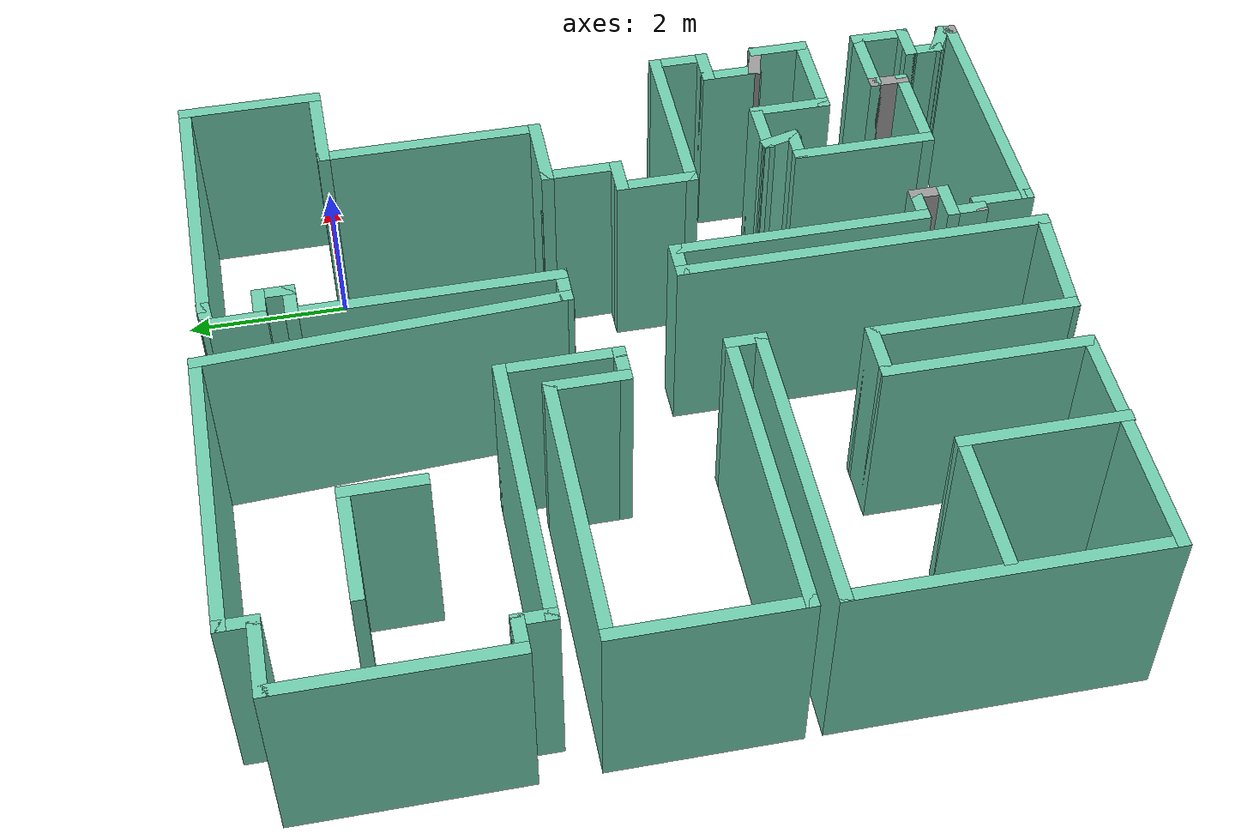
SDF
<?xml version='1.0'?>
<sdf version='1.6'>
  <model name='map_58'>
    <pose frame=''>-3.02526 -3.22087 0 0 -0 0</pose>
    <link name='Wall_0'>
      <collision name='Wall_0_Collision'>
        <geometry>
          <box>
            <size>3.75 0.15 2.5</size>
          </box>
        </geometry>
        <pose frame=''>0 0 1.25 0 -0 0</pose>
      </collision>
      <visual name='Wall_0_Visual'>
        <pose frame=''>0 0 1.25 0 -0 0</pose>
        <geometry>
          <box>
            <size>3.75 0.15 2.5</size>
          </box>
        </geometry>
        <material>
          <script>
            <uri>file://media/materials/scripts/gazebo.material</uri>
            <name>Gazebo/Grey</name>
          </script>
          <ambient>0.435294 0.796078 0.67451 1</ambient>
        </material>
        <meta>
          <layer>0</layer>
        </meta>
      </visual>
      <pose frame=''>-1.65911 4.97874 0 0 -0 3.14159</pose>
    </link>
    <link name='Wall_1'>
      <collision name='Wall_1_Collision'>
        <geometry>
          <box>
            <size>0.5 0.15 2.5</size>
          </box>
        </geometry>
        <pose frame=''>0 0 1.25 0 -0 0</pose>
      </collision>
      <visual name='Wall_1_Visual'>
        <pose frame=''>0 0 1.25 0 -0 0</pose>
        <geometry>
          <box>
            <size>0.5 0.15 2.5</size>
          </box>
        </geometry>
        <material>
          <script>
            <uri>file://media/materials/scripts/gazebo.material</uri>
            <name>Gazebo/Grey</name>
          </script>
          <ambient>0.435294 0.796078 0.67451 1</ambient>
        </material>
        <meta>
          <layer>0</layer>
        </meta>
      </visual>
      <pose frame=''>-3.45912 4.80374 0 0 -0 -1.5708</pose>
    </link>
    <link name='Wall_10'>
      <collision name='Wall_10_Collision'>
        <geometry>
          <box>
            <size>0.5 0.15 2.5</size>
          </box>
        </geometry>
        <pose frame=''>0 0 1.25 0 -0 0</pose>
      </collision>
      <visual name='Wall_10_Visual'>
        <pose frame=''>0 0 1.25 0 -0 0</pose>
        <geometry>
          <box>
            <size>0.5 0.15 2.5</size>
          </box>
        </geometry>
        <material>
          <script>
            <uri>file://media/materials/scripts/gazebo.material</uri>
            <name>Gazebo/Grey</name>
          </script>
          <ambient>0.435294 0.796078 0.67451 1</ambient>
        </material>
        <meta>
          <layer>0</layer>
        </meta>
      </visual>
      <pose frame=''>-0.784115 0.328738 0 0 -0 3.14159</pose>
    </link>
    <link name='Wall_13'>
      <collision name='Wall_13_Collision'>
        <geometry>
          <box>
            <size>1 0.15 2.5</size>
          </box>
        </geometry>
        <pose frame=''>0 0 1.25 0 -0 0</pose>
      </collision>
      <visual name='Wall_13_Visual'>
        <pose frame=''>0 0 1.25 0 -0 0</pose>
        <geometry>
          <box>
            <size>1 0.15 2.5</size>
          </box>
        </geometry>
        <material>
          <script>
            <uri>file://media/materials/scripts/gazebo.material</uri>
            <name>Gazebo/Grey</name>
          </script>
          <ambient>0.435294 0.796078 0.67451 1</ambient>
        </material>
        <meta>
          <layer>0</layer>
        </meta>
      </visual>
      <pose frame=''>-0.959115 0.753738 0 0 -0 1.5708</pose>
    </link>
    <link name='Wall_14'>
      <collision name='Wall_14_Collision'>
        <geometry>
          <box>
            <size>3.5 0.15 2.5</size>
          </box>
        </geometry>
        <pose frame=''>0 0 1.25 0 -0 0</pose>
      </collision>
      <visual name='Wall_14_Visual'>
        <pose frame=''>0 0 1.25 0 -0 0</pose>
        <geometry>
          <box>
            <size>3.5 0.15 2.5</size>
          </box>
        </geometry>
        <material>
          <script>
            <uri>file://media/materials/scripts/gazebo.material</uri>
            <name>Gazebo/Grey</name>
          </script>
          <ambient>0.435294 0.796078 0.67451 1</ambient>
        </material>
        <meta>
          <layer>0</layer>
        </meta>
      </visual>
      <pose frame=''>-2.63411 1.17874 0 0 -0 3.14159</pose>
    </link>
    <link name='Wall_15'>
      <collision name='Wall_15_Collision'>
        <geometry>
          <box>
            <size>2.25 0.15 2.5</size>
          </box>
        </geometry>
        <pose frame=''>0 0 1.25 0 -0 0</pose>
      </collision>
      <visual name='Wall_15_Visual'>
        <pose frame=''>0 0 1.25 0 -0 0</pose>
        <geometry>
          <box>
            <size>2.25 0.15 2.5</size>
          </box>
        </geometry>
        <material>
          <script>
            <uri>file://media/materials/scripts/gazebo.material</uri>
            <name>Gazebo/Grey</name>
          </script>
          <ambient>0.435294 0.796078 0.67451 1</ambient>
        </material>
        <meta>
          <layer>0</layer>
        </meta>
      </visual>
      <pose frame=''>-4.30912 0.128738 0 0 -0 -1.5708</pose>
    </link>
    <link name='Wall_16'>
      <collision name='Wall_16_Collision'>
        <geometry>
          <box>
            <size>3.75 0.15 2.5</size>
          </box>
        </geometry>
        <pose frame=''>0 0 1.25 0 -0 0</pose>
      </collision>
      <visual name='Wall_16_Visual'>
        <pose frame=''>0 0 1.25 0 -0 0</pose>
        <geometry>
          <box>
            <size>3.75 0.15 2.5</size>
          </box>
        </geometry>
        <material>
          <script>
            <uri>file://media/materials/scripts/gazebo.material</uri>
            <name>Gazebo/Grey</name>
          </script>
          <ambient>0.435294 0.796078 0.67451 1</ambient>
        </material>
        <meta>
          <layer>0</layer>
        </meta>
      </visual>
      <pose frame=''>-2.50911 -0.921263 0 0 -0 0</pose>
    </link>
    <link name='Wall_17'>
      <collision name='Wall_17_Collision'>
        <geometry>
          <box>
            <size>0.5 0.15 2.5</size>
          </box>
        </geometry>
        <pose frame=''>0 0 1.25 0 -0 0</pose>
      </collision>
      <visual name='Wall_17_Visual'>
        <pose frame=''>0 0 1.25 0 -0 0</pose>
        <geometry>
          <box>
            <size>0.5 0.15 2.5</size>
          </box>
        </geometry>
        <material>
          <script>
            <uri>file://media/materials/scripts/gazebo.material</uri>
            <name>Gazebo/Grey</name>
          </script>
          <ambient>0.435294 0.796078 0.67451 1</ambient>
        </material>
        <meta>
          <layer>0</layer>
        </meta>
      </visual>
      <pose frame=''>-0.709115 -1.09626 0 0 -0 -1.5708</pose>
    </link>
    <link name='Wall_18'>
      <collision name='Wall_18_Collision'>
        <geometry>
          <box>
            <size>3.75 0.15 2.5</size>
          </box>
        </geometry>
        <pose frame=''>0 0 1.25 0 -0 0</pose>
      </collision>
      <visual name='Wall_18_Visual'>
        <pose frame=''>0 0 1.25 0 -0 0</pose>
        <geometry>
          <box>
            <size>3.75 0.15 2.5</size>
          </box>
        </geometry>
        <material>
          <script>
            <uri>file://media/materials/scripts/gazebo.material</uri>
            <name>Gazebo/Grey</name>
          </script>
          <ambient>0.435294 0.796078 0.67451 1</ambient>
        </material>
        <meta>
          <layer>0</layer>
        </meta>
      </visual>
      <pose frame=''>-2.50911 -1.27126 0 0 -0 3.14159</pose>
    </link>
    <link name='Wall_2'>
      <collision name='Wall_2_Collision'>
        <geometry>
          <box>
            <size>1 0.15 2.5</size>
          </box>
        </geometry>
        <pose frame=''>0 0 1.25 0 -0 0</pose>
      </collision>
      <visual name='Wall_2_Visual'>
        <pose frame=''>0 0 1.25 0 -0 0</pose>
        <geometry>
          <box>
            <size>1 0.15 2.5</size>
          </box>
        </geometry>
        <material>
          <script>
            <uri>file://media/materials/scripts/gazebo.material</uri>
            <name>Gazebo/Grey</name>
          </script>
          <ambient>0.435294 0.796078 0.67451 1</ambient>
        </material>
        <meta>
          <layer>0</layer>
        </meta>
      </visual>
      <pose frame=''>-3.88411 4.62874 0 0 -0 3.14159</pose>
    </link>
    <link name='Wall_21'>
      <collision name='Wall_21_Collision'>
        <geometry>
          <box>
            <size>3.75 0.15 2.5</size>
          </box>
        </geometry>
        <pose frame=''>0 0 1.25 0 -0 0</pose>
      </collision>
      <visual name='Wall_21_Visual'>
        <pose frame=''>0 0 1.25 0 -0 0</pose>
        <geometry>
          <box>
            <size>3.75 0.15 2.5</size>
          </box>
        </geometry>
        <material>
          <script>
            <uri>file://media/materials/scripts/gazebo.material</uri>
            <name>Gazebo/Grey</name>
          </script>
          <ambient>0.435294 0.796078 0.67451 1</ambient>
        </material>
        <meta>
          <layer>0</layer>
        </meta>
      </visual>
      <pose frame=''>-4.30912 -3.07126 0 0 -0 -1.5708</pose>
    </link>
    <link name='Wall_22'>
      <collision name='Wall_22_Collision'>
        <geometry>
          <box>
            <size>3 0.15 2.5</size>
          </box>
        </geometry>
        <pose frame=''>0 0 1.25 0 -0 0</pose>
      </collision>
      <visual name='Wall_22_Visual'>
        <pose frame=''>0 0 1.25 0 -0 0</pose>
        <geometry>
          <box>
            <size>3 0.15 2.5</size>
          </box>
        </geometry>
        <material>
          <script>
            <uri>file://media/materials/scripts/gazebo.material</uri>
            <name>Gazebo/Grey</name>
          </script>
          <ambient>0.435294 0.796078 0.67451 1</ambient>
        </material>
        <meta>
          <layer>0</layer>
        </meta>
      </visual>
      <pose frame=''>-2.88411 -4.87126 0 0 -0 0</pose>
    </link>
    <link name='Wall_23'>
      <collision name='Wall_23_Collision'>
        <geometry>
          <box>
            <size>2.5 0.15 2.5</size>
          </box>
        </geometry>
        <pose frame=''>0 0 1.25 0 -0 0</pose>
      </collision>
      <visual name='Wall_23_Visual'>
        <pose frame=''>0 0 1.25 0 -0 0</pose>
        <geometry>
          <box>
            <size>2.5 0.15 2.5</size>
          </box>
        </geometry>
        <material>
          <script>
            <uri>file://media/materials/scripts/gazebo.material</uri>
            <name>Gazebo/Grey</name>
          </script>
          <ambient>0.435294 0.796078 0.67451 1</ambient>
        </material>
        <meta>
          <layer>0</layer>
        </meta>
      </visual>
      <pose frame=''>-1.45911 -3.69626 0 0 -0 1.5708</pose>
    </link>
    <link name='Wall_24'>
      <collision name='Wall_24_Collision'>
        <geometry>
          <box>
            <size>0.75 0.15 2.5</size>
          </box>
        </geometry>
        <pose frame=''>0 0 1.25 0 -0 0</pose>
      </collision>
      <visual name='Wall_24_Visual'>
        <pose frame=''>0 0 1.25 0 -0 0</pose>
        <geometry>
          <box>
            <size>0.75 0.15 2.5</size>
          </box>
        </geometry>
        <material>
          <script>
            <uri>file://media/materials/scripts/gazebo.material</uri>
            <name>Gazebo/Grey</name>
          </script>
          <ambient>0.435294 0.796078 0.67451 1</ambient>
        </material>
        <meta>
          <layer>0</layer>
        </meta>
      </visual>
      <pose frame=''>-1.15911 -2.52126 0 0 -0 0</pose>
    </link>
    <link name='Wall_25'>
      <collision name='Wall_25_Collision'>
        <geometry>
          <box>
            <size>2.5 0.15 2.5</size>
          </box>
        </geometry>
        <pose frame=''>0 0 1.25 0 -0 0</pose>
      </collision>
      <visual name='Wall_25_Visual'>
        <pose frame=''>0 0 1.25 0 -0 0</pose>
        <geometry>
          <box>
            <size>2.5 0.15 2.5</size>
          </box>
        </geometry>
        <material>
          <script>
            <uri>file://media/materials/scripts/gazebo.material</uri>
            <name>Gazebo/Grey</name>
          </script>
          <ambient>0.435294 0.796078 0.67451 1</ambient>
        </material>
        <meta>
          <layer>0</layer>
        </meta>
      </visual>
      <pose frame=''>-0.859115 -3.69626 0 0 -0 -1.5708</pose>
    </link>
    <link name='Wall_26'>
      <collision name='Wall_26_Collision'>
        <geometry>
          <box>
            <size>1.50412 0.15 2.5</size>
          </box>
        </geometry>
        <pose frame=''>0 0 1.25 0 -0 0</pose>
      </collision>
      <visual name='Wall_26_Visual'>
        <pose frame=''>0 0 1.25 0 -0 0</pose>
        <geometry>
          <box>
            <size>1.50412 0.15 2.5</size>
          </box>
        </geometry>
        <material>
          <script>
            <uri>file://media/materials/scripts/gazebo.material</uri>
            <name>Gazebo/Grey</name>
          </script>
          <ambient>0.435294 0.796078 0.67451 1</ambient>
        </material>
        <meta>
          <layer>0</layer>
        </meta>
      </visual>
      <pose frame=''>-0.184115 -4.92403 0 0 -0 -0.078016</pose>
    </link>
    <link name='Wall_3'>
      <collision name='Wall_3_Collision'>
        <geometry>
          <box>
            <size>2.75 0.15 2.5</size>
          </box>
        </geometry>
        <pose frame=''>0 0 1.25 0 -0 0</pose>
      </collision>
      <visual name='Wall_3_Visual'>
        <pose frame=''>0 0 1.25 0 -0 0</pose>
        <geometry>
          <box>
            <size>2.75 0.15 2.5</size>
          </box>
        </geometry>
        <material>
          <script>
            <uri>file://media/materials/scripts/gazebo.material</uri>
            <name>Gazebo/Grey</name>
          </script>
          <ambient>0.435294 0.796078 0.67451 1</ambient>
        </material>
        <meta>
          <layer>0</layer>
        </meta>
      </visual>
      <pose frame=''>-4.30912 3.32874 0 0 -0 -1.5708</pose>
    </link>
    <link name='Wall_30'>
      <collision name='Wall_30_Collision'>
        <geometry>
          <box>
            <size>0.5 0.15 2.5</size>
          </box>
        </geometry>
        <pose frame=''>0 0 1.25 0 -0 0</pose>
      </collision>
      <visual name='Wall_30_Visual'>
        <pose frame=''>0 0 1.25 0 -0 0</pose>
        <geometry>
          <box>
            <size>0.5 0.15 2.5</size>
          </box>
        </geometry>
        <material>
          <script>
            <uri>file://media/materials/scripts/gazebo.material</uri>
            <name>Gazebo/Grey</name>
          </script>
          <ambient>0.435294 0.796078 0.67451 1</ambient>
        </material>
        <meta>
          <layer>0</layer>
        </meta>
      </visual>
      <pose frame=''>1.01588 -3.62126 0 0 -0 0</pose>
    </link>
    <link name='Wall_31'>
      <collision name='Wall_31_Collision'>
        <geometry>
          <box>
            <size>0.5 0.15 2.5</size>
          </box>
        </geometry>
        <pose frame=''>0 0 1.25 0 -0 0</pose>
      </collision>
      <visual name='Wall_31_Visual'>
        <pose frame=''>0 0 1.25 0 -0 0</pose>
        <geometry>
          <box>
            <size>0.5 0.15 2.5</size>
          </box>
        </geometry>
        <material>
          <script>
            <uri>file://media/materials/scripts/gazebo.material</uri>
            <name>Gazebo/Grey</name>
          </script>
          <ambient>1 1 1 1</ambient>
        </material>
        <meta>
          <layer>0</layer>
        </meta>
      </visual>
      <pose frame=''>1.19088 -3.79626 0 0 -0 -1.5708</pose>
    </link>
    <link name='Wall_32'>
      <collision name='Wall_32_Collision'>
        <geometry>
          <box>
            <size>0.5 0.15 2.5</size>
          </box>
        </geometry>
        <pose frame=''>0 0 1.25 0 -0 0</pose>
      </collision>
      <visual name='Wall_32_Visual'>
        <pose frame=''>0 0 1.25 0 -0 0</pose>
        <geometry>
          <box>
            <size>0.5 0.15 2.5</size>
          </box>
        </geometry>
        <material>
          <script>
            <uri>file://media/materials/scripts/gazebo.material</uri>
            <name>Gazebo/Grey</name>
          </script>
          <ambient>0.435294 0.796078 0.67451 1</ambient>
        </material>
        <meta>
          <layer>0</layer>
        </meta>
      </visual>
      <pose frame=''>1.01588 -3.97126 0 0 -0 3.14159</pose>
    </link>
    <link name='Wall_33'>
      <collision name='Wall_33_Collision'>
        <geometry>
          <box>
            <size>0.5 0.15 2.5</size>
          </box>
        </geometry>
        <pose frame=''>0 0 1.25 0 -0 0</pose>
      </collision>
      <visual name='Wall_33_Visual'>
        <pose frame=''>0 0 1.25 0 -0 0</pose>
        <geometry>
          <box>
            <size>0.5 0.15 2.5</size>
          </box>
        </geometry>
        <material>
          <script>
            <uri>file://media/materials/scripts/gazebo.material</uri>
            <name>Gazebo/Grey</name>
          </script>
          <ambient>0.435294 0.796078 0.67451 1</ambient>
        </material>
        <meta>
          <layer>0</layer>
        </meta>
      </visual>
      <pose frame=''>0.840885 -4.14626 0 0 -0 -1.5708</pose>
    </link>
    <link name='Wall_34'>
      <collision name='Wall_34_Collision'>
        <geometry>
          <box>
            <size>0.25 0.15 2.5</size>
          </box>
        </geometry>
        <pose frame=''>0 0 1.25 0 -0 0</pose>
      </collision>
      <visual name='Wall_34_Visual'>
        <pose frame=''>0 0 1.25 0 -0 0</pose>
        <geometry>
          <box>
            <size>0.25 0.15 2.5</size>
          </box>
        </geometry>
        <material>
          <script>
            <uri>file://media/materials/scripts/gazebo.material</uri>
            <name>Gazebo/Grey</name>
          </script>
          <ambient>1 1 1 1</ambient>
        </material>
        <meta>
          <layer>0</layer>
        </meta>
      </visual>
      <pose frame=''>0.890885 -4.32126 0 0 -0 0</pose>
    </link>
    <link name='Wall_35'>
      <collision name='Wall_35_Collision'>
        <geometry>
          <box>
            <size>0.75 0.15 2.5</size>
          </box>
        </geometry>
        <pose frame=''>0 0 1.25 0 -0 0</pose>
      </collision>
      <visual name='Wall_35_Visual'>
        <pose frame=''>0 0 1.25 0 -0 0</pose>
        <geometry>
          <box>
            <size>0.75 0.15 2.5</size>
          </box>
        </geometry>
        <material>
          <script>
            <uri>file://media/materials/scripts/gazebo.material</uri>
            <name>Gazebo/Grey</name>
          </script>
          <ambient>0.435294 0.796078 0.67451 1</ambient>
        </material>
        <meta>
          <layer>0</layer>
        </meta>
      </visual>
      <pose frame=''>0.940885 -4.62126 0 0 -0 -1.5708</pose>
    </link>
    <link name='Wall_36'>
      <collision name='Wall_36_Collision'>
        <geometry>
          <box>
            <size>3.25 0.15 2.5</size>
          </box>
        </geometry>
        <pose frame=''>0 0 1.25 0 -0 0</pose>
      </collision>
      <visual name='Wall_36_Visual'>
        <pose frame=''>0 0 1.25 0 -0 0</pose>
        <geometry>
          <box>
            <size>3.25 0.15 2.5</size>
          </box>
        </geometry>
        <material>
          <script>
            <uri>file://media/materials/scripts/gazebo.material</uri>
            <name>Gazebo/Grey</name>
          </script>
          <ambient>0.435294 0.796078 0.67451 1</ambient>
        </material>
        <meta>
          <layer>0</layer>
        </meta>
      </visual>
      <pose frame=''>2.49089 -4.92126 0 0 -0 0</pose>
    </link>
    <link name='Wall_37'>
      <collision name='Wall_37_Collision'>
        <geometry>
          <box>
            <size>0.25 0.15 2.5</size>
          </box>
        </geometry>
        <pose frame=''>0 0 1.25 0 -0 0</pose>
      </collision>
      <visual name='Wall_37_Visual'>
        <pose frame=''>0 0 1.25 0 -0 0</pose>
        <geometry>
          <box>
            <size>0.25 0.15 2.5</size>
          </box>
        </geometry>
        <material>
          <script>
            <uri>file://media/materials/scripts/gazebo.material</uri>
            <name>Gazebo/Grey</name>
          </script>
          <ambient>1 1 1 1</ambient>
        </material>
        <meta>
          <layer>0</layer>
        </meta>
      </visual>
      <pose frame=''>4.04089 -4.87126 0 0 -0 1.5708</pose>
    </link>
    <link name='Wall_38'>
      <collision name='Wall_38_Collision'>
        <geometry>
          <box>
            <size>0.5 0.15 2.5</size>
          </box>
        </geometry>
        <pose frame=''>0 0 1.25 0 -0 0</pose>
      </collision>
      <visual name='Wall_38_Visual'>
        <pose frame=''>0 0 1.25 0 -0 0</pose>
        <geometry>
          <box>
            <size>0.5 0.15 2.5</size>
          </box>
        </geometry>
        <material>
          <script>
            <uri>file://media/materials/scripts/gazebo.material</uri>
            <name>Gazebo/Grey</name>
          </script>
          <ambient>0.435294 0.796078 0.67451 1</ambient>
        </material>
        <meta>
          <layer>0</layer>
        </meta>
      </visual>
      <pose frame=''>3.88933 -4.73376 0 0 -0 2.61799</pose>
    </link>
    <link name='Wall_39'>
      <collision name='Wall_39_Collision'>
        <geometry>
          <box>
            <size>0.5 0.15 2.5</size>
          </box>
        </geometry>
        <pose frame=''>0 0 1.25 0 -0 0</pose>
      </collision>
      <visual name='Wall_39_Visual'>
        <pose frame=''>0 0 1.25 0 -0 0</pose>
        <geometry>
          <box>
            <size>0.5 0.15 2.5</size>
          </box>
        </geometry>
        <material>
          <script>
            <uri>file://media/materials/scripts/gazebo.material</uri>
            <name>Gazebo/Grey</name>
          </script>
          <ambient>0.435294 0.796078 0.67451 1</ambient>
        </material>
        <meta>
          <layer>0</layer>
        </meta>
      </visual>
      <pose frame=''>3.73778 -4.47126 0 0 -0 1.5708</pose>
    </link>
    <link name='Wall_4'>
      <collision name='Wall_4_Collision'>
        <geometry>
          <box>
            <size>0.5 0.15 2.5</size>
          </box>
        </geometry>
        <pose frame=''>0 0 1.25 0 -0 0</pose>
      </collision>
      <visual name='Wall_4_Visual'>
        <pose frame=''>0 0 1.25 0 -0 0</pose>
        <geometry>
          <box>
            <size>0.5 0.15 2.5</size>
          </box>
        </geometry>
        <material>
          <script>
            <uri>file://media/materials/scripts/gazebo.material</uri>
            <name>Gazebo/Grey</name>
          </script>
          <ambient>0.435294 0.796078 0.67451 1</ambient>
        </material>
        <meta>
          <layer>0</layer>
        </meta>
      </visual>
      <pose frame=''>-4.13412 2.02874 0 0 -0 0</pose>
    </link>
    <link name='Wall_40'>
      <collision name='Wall_40_Collision'>
        <geometry>
          <box>
            <size>0.5 0.15 2.5</size>
          </box>
        </geometry>
        <pose frame=''>0 0 1.25 0 -0 0</pose>
      </collision>
      <visual name='Wall_40_Visual'>
        <pose frame=''>0 0 1.25 0 -0 0</pose>
        <geometry>
          <box>
            <size>0.5 0.15 2.5</size>
          </box>
        </geometry>
        <material>
          <script>
            <uri>file://media/materials/scripts/gazebo.material</uri>
            <name>Gazebo/Grey</name>
          </script>
          <ambient>0.435294 0.796078 0.67451 1</ambient>
        </material>
        <meta>
          <layer>0</layer>
        </meta>
      </visual>
      <pose frame=''>3.91278 -4.29626 0 0 -0 0</pose>
    </link>
    <link name='Wall_41'>
      <collision name='Wall_41_Collision'>
        <geometry>
          <box>
            <size>0.75 0.15 2.5</size>
          </box>
        </geometry>
        <pose frame=''>0 0 1.25 0 -0 0</pose>
      </collision>
      <visual name='Wall_41_Visual'>
        <pose frame=''>0 0 1.25 0 -0 0</pose>
        <geometry>
          <box>
            <size>0.75 0.15 2.5</size>
          </box>
        </geometry>
        <material>
          <script>
            <uri>file://media/materials/scripts/gazebo.material</uri>
            <name>Gazebo/Grey</name>
          </script>
          <ambient>0.435294 0.796078 0.67451 1</ambient>
        </material>
        <meta>
          <layer>0</layer>
        </meta>
      </visual>
      <pose frame=''>4.08778 -3.99626 0 0 -0 1.5708</pose>
    </link>
    <link name='Wall_42'>
      <collision name='Wall_42_Collision'>
        <geometry>
          <box>
            <size>1 0.15 2.5</size>
          </box>
        </geometry>
        <pose frame=''>0 0 1.25 0 -0 0</pose>
      </collision>
      <visual name='Wall_42_Visual'>
        <pose frame=''>0 0 1.25 0 -0 0</pose>
        <geometry>
          <box>
            <size>1 0.15 2.5</size>
          </box>
        </geometry>
        <material>
          <script>
            <uri>file://media/materials/scripts/gazebo.material</uri>
            <name>Gazebo/Grey</name>
          </script>
          <ambient>0.435294 0.796078 0.67451 1</ambient>
        </material>
        <meta>
          <layer>0</layer>
        </meta>
      </visual>
      <pose frame=''>3.66278 -3.69626 0 0 -0 3.14159</pose>
    </link>
    <link name='Wall_43'>
      <collision name='Wall_43_Collision'>
        <geometry>
          <box>
            <size>0.5 0.15 2.5</size>
          </box>
        </geometry>
        <pose frame=''>0 0 1.25 0 -0 0</pose>
      </collision>
      <visual name='Wall_43_Visual'>
        <pose frame=''>0 0 1.25 0 -0 0</pose>
        <geometry>
          <box>
            <size>0.5 0.15 2.5</size>
          </box>
        </geometry>
        <material>
          <script>
            <uri>file://media/materials/scripts/gazebo.material</uri>
            <name>Gazebo/Grey</name>
          </script>
          <ambient>1 1 1 1</ambient>
        </material>
        <meta>
          <layer>0</layer>
        </meta>
      </visual>
      <pose frame=''>3.23778 -3.87126 0 0 -0 -1.5708</pose>
    </link>
    <link name='Wall_44'>
      <collision name='Wall_44_Collision'>
        <geometry>
          <box>
            <size>1.25 0.15 2.5</size>
          </box>
        </geometry>
        <pose frame=''>0 0 1.25 0 -0 0</pose>
      </collision>
      <visual name='Wall_44_Visual'>
        <pose frame=''>0 0 1.25 0 -0 0</pose>
        <geometry>
          <box>
            <size>1.25 0.15 2.5</size>
          </box>
        </geometry>
        <material>
          <script>
            <uri>file://media/materials/scripts/gazebo.material</uri>
            <name>Gazebo/Grey</name>
          </script>
          <ambient>0.435294 0.796078 0.67451 1</ambient>
        </material>
        <meta>
          <layer>0</layer>
        </meta>
      </visual>
      <pose frame=''>2.68778 -4.04626 0 0 -0 3.14159</pose>
    </link>
    <link name='Wall_47'>
      <collision name='Wall_47_Collision'>
        <geometry>
          <box>
            <size>1.75 0.15 2.5</size>
          </box>
        </geometry>
        <pose frame=''>0 0 1.25 0 -0 0</pose>
      </collision>
      <visual name='Wall_47_Visual'>
        <pose frame=''>0 0 1.25 0 -0 0</pose>
        <geometry>
          <box>
            <size>1.75 0.15 2.5</size>
          </box>
        </geometry>
        <material>
          <script>
            <uri>file://media/materials/scripts/gazebo.material</uri>
            <name>Gazebo/Grey</name>
          </script>
          <ambient>0.435294 0.796078 0.67451 1</ambient>
        </material>
        <meta>
          <layer>0</layer>
        </meta>
      </visual>
      <pose frame=''>2.13778 -3.24626 0 0 -0 1.5708</pose>
    </link>
    <link name='Wall_48'>
      <collision name='Wall_48_Collision'>
        <geometry>
          <box>
            <size>0.5 0.15 2.5</size>
          </box>
        </geometry>
        <pose frame=''>0 0 1.25 0 -0 0</pose>
      </collision>
      <visual name='Wall_48_Visual'>
        <pose frame=''>0 0 1.25 0 -0 0</pose>
        <geometry>
          <box>
            <size>0.5 0.15 2.5</size>
          </box>
        </geometry>
        <material>
          <script>
            <uri>file://media/materials/scripts/gazebo.material</uri>
            <name>Gazebo/Grey</name>
          </script>
          <ambient>0.435294 0.796078 0.67451 1</ambient>
        </material>
        <meta>
          <layer>0</layer>
        </meta>
      </visual>
      <pose frame=''>2.31278 -2.44626 0 0 -0 0</pose>
    </link>
    <link name='Wall_49'>
      <collision name='Wall_49_Collision'>
        <geometry>
          <box>
            <size>0.5 0.15 2.5</size>
          </box>
        </geometry>
        <pose frame=''>0 0 1.25 0 -0 0</pose>
      </collision>
      <visual name='Wall_49_Visual'>
        <pose frame=''>0 0 1.25 0 -0 0</pose>
        <geometry>
          <box>
            <size>0.5 0.15 2.5</size>
          </box>
        </geometry>
        <material>
          <script>
            <uri>file://media/materials/scripts/gazebo.material</uri>
            <name>Gazebo/Grey</name>
          </script>
          <ambient>0.435294 0.796078 0.67451 1</ambient>
        </material>
        <meta>
          <layer>0</layer>
        </meta>
      </visual>
      <pose frame=''>2.44248 -2.27723 0 0 -0 1.8326</pose>
    </link>
    <link name='Wall_50'>
      <collision name='Wall_50_Collision'>
        <geometry>
          <box>
            <size>0.75 0.15 2.5</size>
          </box>
        </geometry>
        <pose frame=''>0 0 1.25 0 -0 0</pose>
      </collision>
      <visual name='Wall_50_Visual'>
        <pose frame=''>0 0 1.25 0 -0 0</pose>
        <geometry>
          <box>
            <size>0.75 0.15 2.5</size>
          </box>
        </geometry>
        <material>
          <script>
            <uri>file://media/materials/scripts/gazebo.material</uri>
            <name>Gazebo/Grey</name>
          </script>
          <ambient>0.435294 0.796078 0.67451 1</ambient>
        </material>
        <meta>
          <layer>0</layer>
        </meta>
      </visual>
      <pose frame=''>2.69719 -2.10819 0 0 -0 0</pose>
    </link>
    <link name='Wall_51'>
      <collision name='Wall_51_Collision'>
        <geometry>
          <box>
            <size>1 0.15 2.5</size>
          </box>
        </geometry>
        <pose frame=''>0 0 1.25 0 -0 0</pose>
      </collision>
      <visual name='Wall_51_Visual'>
        <pose frame=''>0 0 1.25 0 -0 0</pose>
        <geometry>
          <box>
            <size>1 0.15 2.5</size>
          </box>
        </geometry>
        <material>
          <script>
            <uri>file://media/materials/scripts/gazebo.material</uri>
            <name>Gazebo/Grey</name>
          </script>
          <ambient>0.435294 0.796078 0.67451 1</ambient>
        </material>
        <meta>
          <layer>0</layer>
        </meta>
      </visual>
      <pose frame=''>2.99719 -2.53319 0 0 -0 -1.5708</pose>
    </link>
    <link name='Wall_52'>
      <collision name='Wall_52_Collision'>
        <geometry>
          <box>
            <size>1.25 0.15 2.5</size>
          </box>
        </geometry>
        <pose frame=''>0 0 1.25 0 -0 0</pose>
      </collision>
      <visual name='Wall_52_Visual'>
        <pose frame=''>0 0 1.25 0 -0 0</pose>
        <geometry>
          <box>
            <size>1.25 0.15 2.5</size>
          </box>
        </geometry>
        <material>
          <script>
            <uri>file://media/materials/scripts/gazebo.material</uri>
            <name>Gazebo/Grey</name>
          </script>
          <ambient>0.435294 0.796078 0.67451 1</ambient>
        </material>
        <meta>
          <layer>0</layer>
        </meta>
      </visual>
      <pose frame=''>3.54719 -2.95819 0 0 -0 0</pose>
    </link>
    <link name='Wall_53'>
      <collision name='Wall_53_Collision'>
        <geometry>
          <box>
            <size>0.75 0.15 2.5</size>
          </box>
        </geometry>
        <pose frame=''>0 0 1.25 0 -0 0</pose>
      </collision>
      <visual name='Wall_53_Visual'>
        <pose frame=''>0 0 1.25 0 -0 0</pose>
        <geometry>
          <box>
            <size>0.75 0.15 2.5</size>
          </box>
        </geometry>
        <material>
          <script>
            <uri>file://media/materials/scripts/gazebo.material</uri>
            <name>Gazebo/Grey</name>
          </script>
          <ambient>0.435294 0.796078 0.67451 1</ambient>
        </material>
        <meta>
          <layer>0</layer>
        </meta>
      </visual>
      <pose frame=''>4.09719 -2.65819 0 0 -0 1.5708</pose>
    </link>
    <link name='Wall_54'>
      <collision name='Wall_54_Collision'>
        <geometry>
          <box>
            <size>0.5 0.15 2.5</size>
          </box>
        </geometry>
        <pose frame=''>0 0 1.25 0 -0 0</pose>
      </collision>
      <visual name='Wall_54_Visual'>
        <pose frame=''>0 0 1.25 0 -0 0</pose>
        <geometry>
          <box>
            <size>0.5 0.15 2.5</size>
          </box>
        </geometry>
        <material>
          <script>
            <uri>file://media/materials/scripts/gazebo.material</uri>
            <name>Gazebo/Grey</name>
          </script>
          <ambient>1 1 1 1</ambient>
        </material>
        <meta>
          <layer>0</layer>
        </meta>
      </visual>
      <pose frame=''>3.92815 -2.3129 0 0 -0 2.87979</pose>
    </link>
    <link name='Wall_55'>
      <collision name='Wall_55_Collision'>
        <geometry>
          <box>
            <size>0.75 0.15 2.5</size>
          </box>
        </geometry>
        <pose frame=''>0 0 1.25 0 -0 0</pose>
      </collision>
      <visual name='Wall_55_Visual'>
        <pose frame=''>0 0 1.25 0 -0 0</pose>
        <geometry>
          <box>
            <size>0.75 0.15 2.5</size>
          </box>
        </geometry>
        <material>
          <script>
            <uri>file://media/materials/scripts/gazebo.material</uri>
            <name>Gazebo/Grey</name>
          </script>
          <ambient>0.435294 0.796078 0.67451 1</ambient>
        </material>
        <meta>
          <layer>0</layer>
        </meta>
      </visual>
      <pose frame=''>3.75911 -1.9676 0 0 -0 1.5708</pose>
    </link>
    <link name='Wall_56'>
      <collision name='Wall_56_Collision'>
        <geometry>
          <box>
            <size>0.5 0.15 2.5</size>
          </box>
        </geometry>
        <pose frame=''>0 0 1.25 0 -0 0</pose>
      </collision>
      <visual name='Wall_56_Visual'>
        <pose frame=''>0 0 1.25 0 -0 0</pose>
        <geometry>
          <box>
            <size>0.5 0.15 2.5</size>
          </box>
        </geometry>
        <material>
          <script>
            <uri>file://media/materials/scripts/gazebo.material</uri>
            <name>Gazebo/Grey</name>
          </script>
          <ambient>0.435294 0.796078 0.67451 1</ambient>
        </material>
        <meta>
          <layer>0</layer>
        </meta>
      </visual>
      <pose frame=''>3.93411 -1.6676 0 0 -0 0</pose>
    </link>
    <link name='Wall_57'>
      <collision name='Wall_57_Collision'>
        <geometry>
          <box>
            <size>0.75 0.15 2.5</size>
          </box>
        </geometry>
        <pose frame=''>0 0 1.25 0 -0 0</pose>
      </collision>
      <visual name='Wall_57_Visual'>
        <pose frame=''>0 0 1.25 0 -0 0</pose>
        <geometry>
          <box>
            <size>0.75 0.15 2.5</size>
          </box>
        </geometry>
        <material>
          <script>
            <uri>file://media/materials/scripts/gazebo.material</uri>
            <name>Gazebo/Grey</name>
          </script>
          <ambient>0.435294 0.796078 0.67451 1</ambient>
        </material>
        <meta>
          <layer>0</layer>
        </meta>
      </visual>
      <pose frame=''>4.10912 -1.3676 0 0 -0 1.5708</pose>
    </link>
    <link name='Wall_58'>
      <collision name='Wall_58_Collision'>
        <geometry>
          <box>
            <size>2.25 0.15 2.5</size>
          </box>
        </geometry>
        <pose frame=''>0 0 1.25 0 -0 0</pose>
      </collision>
      <visual name='Wall_58_Visual'>
        <pose frame=''>0 0 1.25 0 -0 0</pose>
        <geometry>
          <box>
            <size>2.25 0.15 2.5</size>
          </box>
        </geometry>
        <material>
          <script>
            <uri>file://media/materials/scripts/gazebo.material</uri>
            <name>Gazebo/Grey</name>
          </script>
          <ambient>0.435294 0.796078 0.67451 1</ambient>
        </material>
        <meta>
          <layer>0</layer>
        </meta>
      </visual>
      <pose frame=''>3.05911 -1.0676 0 0 -0 3.14159</pose>
    </link>
    <link name='Wall_67'>
      <collision name='Wall_67_Collision'>
        <geometry>
          <box>
            <size>1 0.15 2.5</size>
          </box>
        </geometry>
        <pose frame=''>0 0 1.25 0 -0 0</pose>
      </collision>
      <visual name='Wall_67_Visual'>
        <pose frame=''>0 0 1.25 0 -0 0</pose>
        <geometry>
          <box>
            <size>1 0.15 2.5</size>
          </box>
        </geometry>
        <material>
          <script>
            <uri>file://media/materials/scripts/gazebo.material</uri>
            <name>Gazebo/Grey</name>
          </script>
          <ambient>0.435294 0.796078 0.67451 1</ambient>
        </material>
        <meta>
          <layer>0</layer>
        </meta>
      </visual>
      <pose frame=''>2.00911 -0.642601 0 0 -0 1.5708</pose>
    </link>
    <link name='Wall_68'>
      <collision name='Wall_68_Collision'>
        <geometry>
          <box>
            <size>0.5 0.15 2.5</size>
          </box>
        </geometry>
        <pose frame=''>0 0 1.25 0 -0 0</pose>
      </collision>
      <visual name='Wall_68_Visual'>
        <pose frame=''>0 0 1.25 0 -0 0</pose>
        <geometry>
          <box>
            <size>0.5 0.15 2.5</size>
          </box>
        </geometry>
        <material>
          <script>
            <uri>file://media/materials/scripts/gazebo.material</uri>
            <name>Gazebo/Grey</name>
          </script>
          <ambient>0.435294 0.796078 0.67451 1</ambient>
        </material>
        <meta>
          <layer>0</layer>
        </meta>
      </visual>
      <pose frame=''>2.18411 -0.217602 0 0 -0 0</pose>
    </link>
    <link name='Wall_69'>
      <collision name='Wall_69_Collision'>
        <geometry>
          <box>
            <size>1 0.15 2.5</size>
          </box>
        </geometry>
        <pose frame=''>0 0 1.25 0 -0 0</pose>
      </collision>
      <visual name='Wall_69_Visual'>
        <pose frame=''>0 0 1.25 0 -0 0</pose>
        <geometry>
          <box>
            <size>1 0.15 2.5</size>
          </box>
        </geometry>
        <material>
          <script>
            <uri>file://media/materials/scripts/gazebo.material</uri>
            <name>Gazebo/Grey</name>
          </script>
          <ambient>0.435294 0.796078 0.67451 1</ambient>
        </material>
        <meta>
          <layer>0</layer>
        </meta>
      </visual>
      <pose frame=''>2.35912 0.207398 0 0 -0 1.5708</pose>
    </link>
    <link name='Wall_7'>
      <collision name='Wall_7_Collision'>
        <geometry>
          <box>
            <size>0.5 0.15 2.5</size>
          </box>
        </geometry>
        <pose frame=''>0 0 1.25 0 -0 0</pose>
      </collision>
      <visual name='Wall_7_Visual'>
        <pose frame=''>0 0 1.25 0 -0 0</pose>
        <geometry>
          <box>
            <size>0.5 0.15 2.5</size>
          </box>
        </geometry>
        <material>
          <script>
            <uri>file://media/materials/scripts/gazebo.material</uri>
            <name>Gazebo/Grey</name>
          </script>
          <ambient>0.435294 0.796078 0.67451 1</ambient>
        </material>
        <meta>
          <layer>0</layer>
        </meta>
      </visual>
      <pose frame=''>-3.95912 1.85374 0 0 -0 -1.5708</pose>
    </link>
    <link name='Wall_70'>
      <collision name='Wall_70_Collision'>
        <geometry>
          <box>
            <size>1 0.15 2.5</size>
          </box>
        </geometry>
        <pose frame=''>0 0 1.25 0 -0 0</pose>
      </collision>
      <visual name='Wall_70_Visual'>
        <pose frame=''>0 0 1.25 0 -0 0</pose>
        <geometry>
          <box>
            <size>1 0.15 2.5</size>
          </box>
        </geometry>
        <material>
          <script>
            <uri>file://media/materials/scripts/gazebo.material</uri>
            <name>Gazebo/Grey</name>
          </script>
          <ambient>0.435294 0.796078 0.67451 1</ambient>
        </material>
        <meta>
          <layer>0</layer>
        </meta>
      </visual>
      <pose frame=''>2.78411 0.632398 0 0 -0 0</pose>
    </link>
    <link name='Wall_71'>
      <collision name='Wall_71_Collision'>
        <geometry>
          <box>
            <size>2.75 0.15 2.5</size>
          </box>
        </geometry>
        <pose frame=''>0 0 1.25 0 -0 0</pose>
      </collision>
      <visual name='Wall_71_Visual'>
        <pose frame=''>0 0 1.25 0 -0 0</pose>
        <geometry>
          <box>
            <size>2.75 0.15 2.5</size>
          </box>
        </geometry>
        <material>
          <script>
            <uri>file://media/materials/scripts/gazebo.material</uri>
            <name>Gazebo/Grey</name>
          </script>
          <ambient>0.435294 0.796078 0.67451 1</ambient>
        </material>
        <meta>
          <layer>0</layer>
        </meta>
      </visual>
      <pose frame=''>3.20912 1.9324 0 0 -0 1.5708</pose>
    </link>
    <link name='Wall_72'>
      <collision name='Wall_72_Collision'>
        <geometry>
          <box>
            <size>1.25 0.15 2.5</size>
          </box>
        </geometry>
        <pose frame=''>0 0 1.25 0 -0 0</pose>
      </collision>
      <visual name='Wall_72_Visual'>
        <pose frame=''>0 0 1.25 0 -0 0</pose>
        <geometry>
          <box>
            <size>1.25 0.15 2.5</size>
          </box>
        </geometry>
        <material>
          <script>
            <uri>file://media/materials/scripts/gazebo.material</uri>
            <name>Gazebo/Grey</name>
          </script>
          <ambient>0.435294 0.796078 0.67451 1</ambient>
        </material>
        <meta>
          <layer>0</layer>
        </meta>
      </visual>
      <pose frame=''>3.75911 3.2324 0 0 -0 0</pose>
    </link>
    <link name='Wall_73'>
      <collision name='Wall_73_Collision'>
        <geometry>
          <box>
            <size>1.75 0.15 2.5</size>
          </box>
        </geometry>
        <pose frame=''>0 0 1.25 0 -0 0</pose>
      </collision>
      <visual name='Wall_73_Visual'>
        <pose frame=''>0 0 1.25 0 -0 0</pose>
        <geometry>
          <box>
            <size>1.75 0.15 2.5</size>
          </box>
        </geometry>
        <material>
          <script>
            <uri>file://media/materials/scripts/gazebo.material</uri>
            <name>Gazebo/Grey</name>
          </script>
          <ambient>0.435294 0.796078 0.67451 1</ambient>
        </material>
        <meta>
          <layer>0</layer>
        </meta>
      </visual>
      <pose frame=''>4.30912 4.0324 0 0 -0 1.5708</pose>
    </link>
    <link name='Wall_74'>
      <collision name='Wall_74_Collision'>
        <geometry>
          <box>
            <size>3.5 0.15 2.5</size>
          </box>
        </geometry>
        <pose frame=''>0 0 1.25 0 -0 0</pose>
      </collision>
      <visual name='Wall_74_Visual'>
        <pose frame=''>0 0 1.25 0 -0 0</pose>
        <geometry>
          <box>
            <size>3.5 0.15 2.5</size>
          </box>
        </geometry>
        <material>
          <script>
            <uri>file://media/materials/scripts/gazebo.material</uri>
            <name>Gazebo/Grey</name>
          </script>
          <ambient>0.435294 0.796078 0.67451 1</ambient>
        </material>
        <meta>
          <layer>0</layer>
        </meta>
      </visual>
      <pose frame=''>2.63411 4.8324 0 0 -0 3.14159</pose>
    </link>
    <link name='Wall_76'>
      <collision name='Wall_76_Collision'>
        <geometry>
          <box>
            <size>0.75 0.15 2.5</size>
          </box>
        </geometry>
        <pose frame=''>0 0 1.25 0 -0 0</pose>
      </collision>
      <visual name='Wall_76_Visual'>
        <pose frame=''>0 0 1.25 0 -0 0</pose>
        <geometry>
          <box>
            <size>0.75 0.15 2.5</size>
          </box>
        </geometry>
        <material>
          <script>
            <uri>file://media/materials/scripts/gazebo.material</uri>
            <name>Gazebo/Grey</name>
          </script>
          <ambient>0.435294 0.796078 0.67451 1</ambient>
        </material>
        <meta>
          <layer>0</layer>
        </meta>
      </visual>
      <pose frame=''>0.703745 4.50284 0 0 -0 -1.5708</pose>
    </link>
    <link name='Wall_77'>
      <collision name='Wall_77_Collision'>
        <geometry>
          <box>
            <size>0.5 0.15 2.5</size>
          </box>
        </geometry>
        <pose frame=''>0 0 1.25 0 -0 0</pose>
      </collision>
      <visual name='Wall_77_Visual'>
        <pose frame=''>0 0 1.25 0 -0 0</pose>
        <geometry>
          <box>
            <size>0.5 0.15 2.5</size>
          </box>
        </geometry>
        <material>
          <script>
            <uri>file://media/materials/scripts/gazebo.material</uri>
            <name>Gazebo/Grey</name>
          </script>
          <ambient>0.435294 0.796078 0.67451 1</ambient>
        </material>
        <meta>
          <layer>0</layer>
        </meta>
      </visual>
      <pose frame=''>0.878745 4.20284 0 0 -0 0</pose>
    </link>
    <link name='Wall_78'>
      <collision name='Wall_78_Collision'>
        <geometry>
          <box>
            <size>0.5 0.15 2.5</size>
          </box>
        </geometry>
        <pose frame=''>0 0 1.25 0 -0 0</pose>
      </collision>
      <visual name='Wall_78_Visual'>
        <pose frame=''>0 0 1.25 0 -0 0</pose>
        <geometry>
          <box>
            <size>0.5 0.15 2.5</size>
          </box>
        </geometry>
        <material>
          <script>
            <uri>file://media/materials/scripts/gazebo.material</uri>
            <name>Gazebo/Grey</name>
          </script>
          <ambient>0.435294 0.796078 0.67451 1</ambient>
        </material>
        <meta>
          <layer>0</layer>
        </meta>
      </visual>
      <pose frame=''>1.05374 4.02784 0 0 -0 -1.5708</pose>
    </link>
    <link name='Wall_79'>
      <collision name='Wall_79_Collision'>
        <geometry>
          <box>
            <size>0.5 0.15 2.5</size>
          </box>
        </geometry>
        <pose frame=''>0 0 1.25 0 -0 0</pose>
      </collision>
      <visual name='Wall_79_Visual'>
        <pose frame=''>0 0 1.25 0 -0 0</pose>
        <geometry>
          <box>
            <size>0.5 0.15 2.5</size>
          </box>
        </geometry>
        <material>
          <script>
            <uri>file://media/materials/scripts/gazebo.material</uri>
            <name>Gazebo/Grey</name>
          </script>
          <ambient>0.435294 0.796078 0.67451 1</ambient>
        </material>
        <meta>
          <layer>0</layer>
        </meta>
      </visual>
      <pose frame=''>0.878745 3.85284 0 0 -0 3.14159</pose>
    </link>
    <link name='Wall_8'>
      <collision name='Wall_8_Collision'>
        <geometry>
          <box>
            <size>3.5 0.15 2.5</size>
          </box>
        </geometry>
        <pose frame=''>0 0 1.25 0 -0 0</pose>
      </collision>
      <visual name='Wall_8_Visual'>
        <pose frame=''>0 0 1.25 0 -0 0</pose>
        <geometry>
          <box>
            <size>3.5 0.15 2.5</size>
          </box>
        </geometry>
        <material>
          <script>
            <uri>file://media/materials/scripts/gazebo.material</uri>
            <name>Gazebo/Grey</name>
          </script>
          <ambient>0.435294 0.796078 0.67451 1</ambient>
        </material>
        <meta>
          <layer>0</layer>
        </meta>
      </visual>
      <pose frame=''>-2.28411 1.67874 0 0 -0 0</pose>
    </link>
    <link name='Wall_80'>
      <collision name='Wall_80_Collision'>
        <geometry>
          <box>
            <size>3.25 0.15 2.5</size>
          </box>
        </geometry>
        <pose frame=''>0 0 1.25 0 -0 0</pose>
      </collision>
      <visual name='Wall_80_Visual'>
        <pose frame=''>0 0 1.25 0 -0 0</pose>
        <geometry>
          <box>
            <size>3.25 0.15 2.5</size>
          </box>
        </geometry>
        <material>
          <script>
            <uri>file://media/materials/scripts/gazebo.material</uri>
            <name>Gazebo/Grey</name>
          </script>
          <ambient>0.435294 0.796078 0.67451 1</ambient>
        </material>
        <meta>
          <layer>0</layer>
        </meta>
      </visual>
      <pose frame=''>0.703745 2.30284 0 0 -0 -1.5708</pose>
    </link>
    <link name='Wall_81'>
      <collision name='Wall_81_Collision'>
        <geometry>
          <box>
            <size>0.5 0.15 2.5</size>
          </box>
        </geometry>
        <pose frame=''>0 0 1.25 0 -0 0</pose>
      </collision>
      <visual name='Wall_81_Visual'>
        <pose frame=''>0 0 1.25 0 -0 0</pose>
        <geometry>
          <box>
            <size>0.5 0.15 2.5</size>
          </box>
        </geometry>
        <material>
          <script>
            <uri>file://media/materials/scripts/gazebo.material</uri>
            <name>Gazebo/Grey</name>
          </script>
          <ambient>0.435294 0.796078 0.67451 1</ambient>
        </material>
        <meta>
          <layer>0</layer>
        </meta>
      </visual>
      <pose frame=''>0.528745 0.752844 0 0 -0 3.14159</pose>
    </link>
    <link name='Wall_82'>
      <collision name='Wall_82_Collision'>
        <geometry>
          <box>
            <size>4.38125 0.15 2.5</size>
          </box>
        </geometry>
        <pose frame=''>0 0 1.25 0 -0 0</pose>
      </collision>
      <visual name='Wall_82_Visual'>
        <pose frame=''>0 0 1.25 0 -0 0</pose>
        <geometry>
          <box>
            <size>4.38125 0.15 2.5</size>
          </box>
        </geometry>
        <material>
          <script>
            <uri>file://media/materials/scripts/gazebo.material</uri>
            <name>Gazebo/Grey</name>
          </script>
          <ambient>0.435294 0.796078 0.67451 1</ambient>
        </material>
        <meta>
          <layer>0</layer>
        </meta>
      </visual>
      <pose frame=''>0.247315 2.86579 0 0 -0 1.62112</pose>
    </link>
    <link name='Wall_84'>
      <collision name='Wall_84_Collision'>
        <geometry>
          <box>
            <size>4.5 0.15 2.5</size>
          </box>
        </geometry>
        <pose frame=''>0 0 1.25 0 -0 0</pose>
      </collision>
      <visual name='Wall_84_Visual'>
        <pose frame=''>0 0 1.25 0 -0 0</pose>
        <geometry>
          <box>
            <size>4.5 0.15 2.5</size>
          </box>
        </geometry>
        <material>
          <script>
            <uri>file://media/materials/scripts/gazebo.material</uri>
            <name>Gazebo/Grey</name>
          </script>
          <ambient>0.435294 0.796078 0.67451 1</ambient>
        </material>
        <meta>
          <layer>0</layer>
        </meta>
      </visual>
      <pose frame=''>0.490885 -2.8018 0 0 -0 1.5708</pose>
    </link>
    <link name='Wall_85'>
      <collision name='Wall_85_Collision'>
        <geometry>
          <box>
            <size>0.5 0.15 2.5</size>
          </box>
        </geometry>
        <pose frame=''>0 0 1.25 0 -0 0</pose>
      </collision>
      <visual name='Wall_85_Visual'>
        <pose frame=''>0 0 1.25 0 -0 0</pose>
        <geometry>
          <box>
            <size>0.5 0.15 2.5</size>
          </box>
        </geometry>
        <material>
          <script>
            <uri>file://media/materials/scripts/gazebo.material</uri>
            <name>Gazebo/Grey</name>
          </script>
          <ambient>0.435294 0.796078 0.67451 1</ambient>
        </material>
        <meta>
          <layer>0</layer>
        </meta>
      </visual>
      <pose frame=''>0.665885 -0.626799 0 0 -0 0</pose>
    </link>
    <link name='Wall_86'>
      <collision name='Wall_86_Collision'>
        <geometry>
          <box>
            <size>3.14446 0.15 2.5</size>
          </box>
        </geometry>
        <pose frame=''>0 0 1.25 0 -0 0</pose>
      </collision>
      <visual name='Wall_86_Visual'>
        <pose frame=''>0 0 1.25 0 -0 0</pose>
        <geometry>
          <box>
            <size>3.14446 0.15 2.5</size>
          </box>
        </geometry>
        <material>
          <script>
            <uri>file://media/materials/scripts/gazebo.material</uri>
            <name>Gazebo/Grey</name>
          </script>
          <ambient>0.435294 0.796078 0.67451 1</ambient>
        </material>
        <meta>
          <layer>0</layer>
        </meta>
      </visual>
      <pose frame=''>0.840885 -2.12403 0 0 -0 -1.5708</pose>
    </link>
    <link name='Wall_88'>
      <collision name='Wall_88_Collision'>
        <geometry>
          <box>
            <size>1.5 0.15 2.5</size>
          </box>
        </geometry>
        <pose frame=''>0 0 1.25 0 -0 0</pose>
      </collision>
      <visual name='Wall_88_Visual'>
        <pose frame=''>0 0 1.25 0 -0 0</pose>
        <geometry>
          <box>
            <size>1.5 0.15 2.5</size>
          </box>
        </geometry>
        <material>
          <script>
            <uri>file://media/materials/scripts/gazebo.material</uri>
            <name>Gazebo/Grey</name>
          </script>
          <ambient>0.435294 0.796078 0.67451 1</ambient>
        </material>
        <meta>
          <layer>0</layer>
        </meta>
      </visual>
      <pose frame=''>-2.66681 3.57159 0 0 -0 0</pose>
    </link>
    <link name='Wall_89'>
      <collision name='Wall_89_Collision'>
        <geometry>
          <box>
            <size>1 0.15 2.5</size>
          </box>
        </geometry>
        <pose frame=''>0 0 1.25 0 -0 0</pose>
      </collision>
      <visual name='Wall_89_Visual'>
        <pose frame=''>0 0 1.25 0 -0 0</pose>
        <geometry>
          <box>
            <size>1 0.15 2.5</size>
          </box>
        </geometry>
        <material>
          <script>
            <uri>file://media/materials/scripts/gazebo.material</uri>
            <name>Gazebo/Grey</name>
          </script>
          <ambient>0.435294 0.796078 0.67451 1</ambient>
        </material>
        <meta>
          <layer>0</layer>
        </meta>
      </visual>
      <pose frame=''>-1.99181 3.14659 0 0 -0 -1.5708</pose>
    </link>
    <link name='Wall_9'>
      <collision name='Wall_9_Collision'>
        <geometry>
          <box>
            <size>1.5 0.15 2.5</size>
          </box>
        </geometry>
        <pose frame=''>0 0 1.25 0 -0 0</pose>
      </collision>
      <visual name='Wall_9_Visual'>
        <pose frame=''>0 0 1.25 0 -0 0</pose>
        <geometry>
          <box>
            <size>1.5 0.15 2.5</size>
          </box>
        </geometry>
        <material>
          <script>
            <uri>file://media/materials/scripts/gazebo.material</uri>
            <name>Gazebo/Grey</name>
          </script>
          <ambient>0.435294 0.796078 0.67451 1</ambient>
        </material>
        <meta>
          <layer>0</layer>
        </meta>
      </visual>
      <pose frame=''>-0.609115 1.00374 0 0 -0 -1.5708</pose>
    </link>
    <link name='Wall_91'>
      <collision name='Wall_91_Collision'>
        <geometry>
          <box>
            <size>1.75 0.15 2.5</size>
          </box>
        </geometry>
        <pose frame=''>0 0 1.25 0 -0 0</pose>
      </collision>
      <visual name='Wall_91_Visual'>
        <pose frame=''>0 0 1.25 0 -0 0</pose>
        <geometry>
          <box>
            <size>1.75 0.15 2.5</size>
          </box>
        </geometry>
        <material>
          <script>
            <uri>file://media/materials/scripts/gazebo.material</uri>
            <name>Gazebo/Grey</name>
          </script>
          <ambient>0.435294 0.796078 0.67451 1</ambient>
        </material>
        <meta>
          <layer>0</layer>
        </meta>
      </visual>
      <pose frame=''>-3.3861 -3.04202 0 0 -0 0</pose>
    </link>
    <link name='Wall_92'>
      <collision name='Wall_92_Collision'>
        <geometry>
          <box>
            <size>2 0.15 2.5</size>
          </box>
        </geometry>
        <pose frame=''>0 0 1.25 0 -0 0</pose>
      </collision>
      <visual name='Wall_92_Visual'>
        <pose frame=''>0 0 1.25 0 -0 0</pose>
        <geometry>
          <box>
            <size>2 0.15 2.5</size>
          </box>
        </geometry>
        <material>
          <script>
            <uri>file://media/materials/scripts/gazebo.material</uri>
            <name>Gazebo/Grey</name>
          </script>
          <ambient>0.435294 0.796078 0.67451 1</ambient>
        </material>
        <meta>
          <layer>0</layer>
        </meta>
      </visual>
      <pose frame=''>-2.5861 -3.96702 0 0 -0 -1.5708</pose>
    </link>
    <link name='Wall_94'>
      <collision name='Wall_94_Collision'>
        <geometry>
          <box>
            <size>0.407075 0.15 2.5</size>
          </box>
        </geometry>
        <pose frame=''>0 0 1.25 0 -0 0</pose>
      </collision>
      <visual name='Wall_94_Visual'>
        <pose frame=''>0 0 1.25 0 -0 0</pose>
        <geometry>
          <box>
            <size>0.407075 0.15 2.5</size>
          </box>
        </geometry>
        <material>
          <script>
            <uri>file://media/materials/scripts/gazebo.material</uri>
            <name>Gazebo/Grey</name>
          </script>
          <ambient>0.435294 0.796078 0.67451 1</ambient>
        </material>
        <meta>
          <layer>0</layer>
        </meta>
      </visual>
      <pose frame=''>0.83143 4.81762 0 0 -0 0.115219</pose>
    </link>
    <static>1</static>
  </model>
</sdf>
